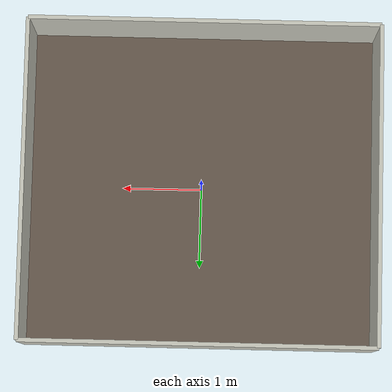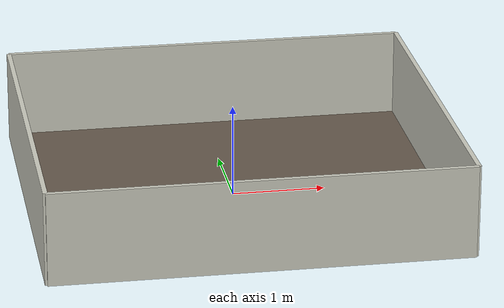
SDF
<?xml version="1.0"?>
<sdf version="1.6">
  <model name="room">
    <static>1</static>
    <pose>0 0 0 0 0 0</pose>
    <link name="link">

      <!-- ── Floor ─────────────────────────────────────────────────────── -->
      <collision name="floor_col">
        <pose>0 0 0.025 0 0 0</pose>
        <geometry><box><size>4.4 4.0 0.05</size></box></geometry>
      </collision>
      <visual name="floor_vis">
        <pose>0 0 0.025 0 0 0</pose>
        <geometry><box><size>4.4 4.0 0.05</size></box></geometry>
        <material>
          <ambient>0.4 0.35 0.3 1</ambient>
          <diffuse>0.4 0.35 0.3 1</diffuse>
        </material>
      </visual>

      <!-- ── North wall ─────────────────────────────────────────────────── -->
      <collision name="wall_north_col">
        <pose>0 2.0 0.5 0 0 0</pose>
        <geometry><box><size>4.4 0.05 1.0</size></box></geometry>
      </collision>
      <visual name="wall_north_vis">
        <pose>0 2.0 0.5 0 0 0</pose>
        <geometry><box><size>4.4 0.05 1.0</size></box></geometry>
        <material>
          <ambient>0.8 0.8 0.75 1</ambient>
          <diffuse>0.8 0.8 0.75 1</diffuse>
        </material>
      </visual>

      <!-- ── South wall ─────────────────────────────────────────────────── -->
      <collision name="wall_south_col">
        <pose>0 -2.0 0.5 0 0 0</pose>
        <geometry><box><size>4.4 0.05 1.0</size></box></geometry>
      </collision>
      <visual name="wall_south_vis">
        <pose>0 -2.0 0.5 0 0 0</pose>
        <geometry><box><size>4.4 0.05 1.0</size></box></geometry>
        <material>
          <ambient>0.8 0.8 0.75 1</ambient>
          <diffuse>0.8 0.8 0.75 1</diffuse>
        </material>
      </visual>

      <!-- ── East wall ──────────────────────────────────────────────────── -->
      <collision name="wall_east_col">
        <pose>2.2 0 0.5 0 0 0</pose>
        <geometry><box><size>0.05 4.0 1.0</size></box></geometry>
      </collision>
      <visual name="wall_east_vis">
        <pose>2.2 0 0.5 0 0 0</pose>
        <geometry><box><size>0.05 4.0 1.0</size></box></geometry>
        <material>
          <ambient>0.8 0.8 0.75 1</ambient>
          <diffuse>0.8 0.8 0.75 1</diffuse>
        </material>
      </visual>

      <!-- ── West wall ──────────────────────────────────────────────────── -->
      <collision name="wall_west_col">
        <pose>-2.2 0 0.5 0 0 0</pose>
        <geometry><box><size>0.05 4.0 1.0</size></box></geometry>
      </collision>
      <visual name="wall_west_vis">
        <pose>-2.2 0 0.5 0 0 0</pose>
        <geometry><box><size>0.05 4.0 1.0</size></box></geometry>
        <material>
          <ambient>0.8 0.8 0.75 1</ambient>
          <diffuse>0.8 0.8 0.75 1</diffuse>
        </material>
      </visual>

    </link>
  </model>
</sdf>
